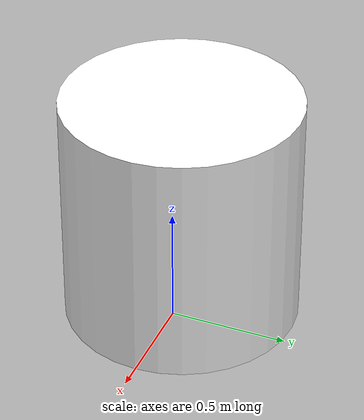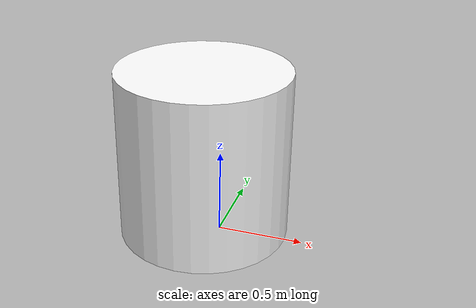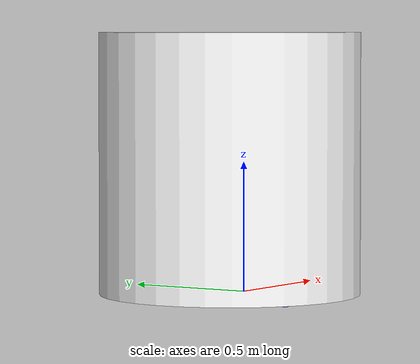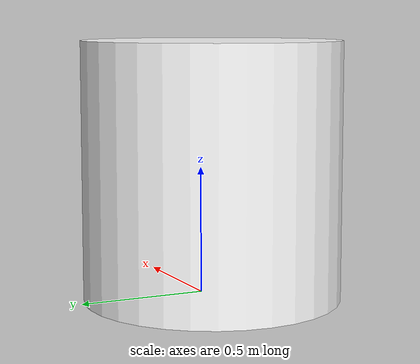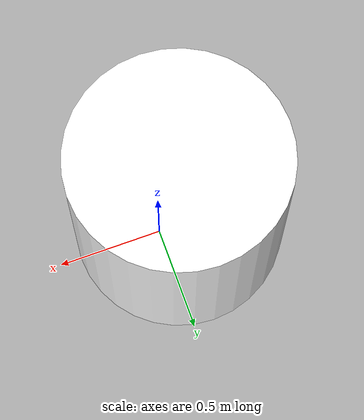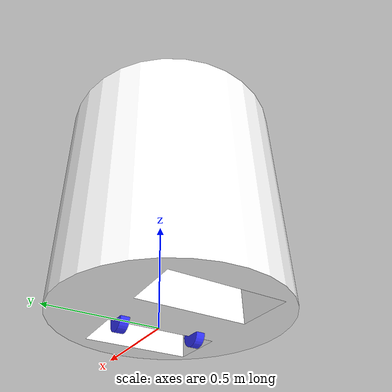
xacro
<?xml version="1.0"?>
<robot xmlns:xacro="http://www.ros.org/wiki/xacro" >

    <xacro:include filename="inertial_macros.xacro" /> <!-- ดึงข้อมูลจากไฟล์ inertial_macros.xacro -->
    <material name="white"> <!-- สร้าง material ของสีขาว  -->
        <color rgba="1 1 1 1" /> <!-- กำหนดค่าสี  -->
    </material>

    <material name="orange"> <!-- สร้าง material ของสีส้ม  -->
        <color rgba="1 0.3 0.1 1"/> <!-- กำหนดค่าสี  -->
    </material>

    <material name="blue"> <!-- สร้าง material ของสีฟ้า  -->
        <color rgba="0.2 0.2 1 1"/> <!-- กำหนดค่าสี  -->
    </material>

    <material name="black"> <!-- สร้าง material ของสีดำ  -->
        <color rgba="0 0 0 1"/> <!-- กำหนดค่าสี  -->
    </material>

    <material name="red"> <!-- สร้าง material ของสีแดง  -->
        <color rgba="1 0 0 1"/> <!-- กำหนดค่าสี  -->
    </material>

    <!-- BASE LINK -->

    <link name="base_link"> <!-- สร้าง link ชื่อ base_link  -->

    </link>

    <!-- BASE_FOOTPRINT LINK -->

    <joint name="base_footprint_joint" type="fixed">
        <parent link="base_link"/>
        <child link="base_footprint"/>
        <origin xyz="0 0 0" rpy="0 0 0"/>
    </joint>

    <link name="base_footprint">
    </link>

    <link name="chassis">
        <visual>
            <origin xyz="0.0 0.0 -0.0" rpy="0 0 0"/>
            <geometry>
                <mesh filename = "file://$(find articubot_one)/description/Model_dae/body.dae" scale = "1 1 1"/>
            </geometry>
            <material name="white"/>
        </visual>
        <collision>
            <origin xyz="0.0 0.0 0.0" rpy="0 0 0"/>
            <geometry>
                <mesh filename = "file://$(find articubot_one)/description/Model_dae/body.dae" scale = "1 1 1"/>
            </geometry>
        </collision>
        <xacro:inertial_cylinder mass="200" length="1.0" radius="0.5">
            <origin xyz="0.0 0.0 0.0" rpy="0 0 0"/>
        </xacro:inertial_cylinder>
    </link>
    <gazebo reference="chassis">
        <material>Gazebo/Orange</material>
    </gazebo>

    <joint name="chassis_joint" type="fixed"> <!-- สร้าง joint ชื่อ chassis_joint แบบ fixed  -->
        <parent link="base_link"/> <!-- สร้าง joint_link หลัก ชื่อ base_link -->
        <child link="chassis"/> <!-- สร้าง joint_link ย่อย ชื่อ chassis -->
        <origin xyz="-0.1 0 0"/> <!-- กำหนดตั้งค่าพิกัด (x, y, z) ของ joint -->
    </joint>

   <!-- LEFT WHEEL -->

    <joint name="left_wheel_joint" type="continuous"> <!-- สร้าง joint ชื่อ left_wheel_joint แบบ continuous  -->
        <parent link="base_link"/> <!-- สร้าง joint_link หลัก ชื่อ base_link -->
        <child link="left_wheel"/> <!-- สร้าง joint_link ย่อย ชื่อ left_wheel -->
        <origin xyz="0 0.175 0" rpy="-${pi/2} 0 0"/> <!-- กำหนดตั้งค่าพิกัด (x, y, z) และการหันหน้าของ joint -->
        <axis xyz="0 0 1"/> <!-- กำหนดแกนหมุนของ joint -->
    </joint>
    <link name="left_wheel"> <!-- สร้าง link ชื่อ left_wheel  -->
        <visual>
            <geometry>
                <cylinder length="0.04" radius="0.05" /> <!-- สร้างทรงกระบอก visual และกำหนดความยาวและรัศมี -->
            </geometry>
            <material name="blue"/> <!-- ดึงข้อมูลค่าสีจาก material ชื่อ blue -->
        </visual>
        <collision>
            <geometry>
                <cylinder length="0.04" radius="0.05" />  <!-- สร้างกล่อง collision และกำหนดขนาด -->
            </geometry>
        </collision>
        <xacro:inertial_cylinder mass="0.1" length="0.05" radius="0.05"> <!-- กำหนด inertial_cylinder ค่ามวล ความยาวและรัศมี -->
            <origin xyz="0 0 0" rpy="0 0 0"/> <!-- กำหนด inertial_cylinder ของ link left_wheel และตั้งค่าพิกัด (x, y, z) และแกนหมุน -->
        </xacro:inertial_cylinder>
    </link>
    <gazebo reference="left_wheel">
        <material>Gazebo/Blue</material>
    </gazebo>

    <!-- RIGHT WHEEL -->

    <joint name="right_wheel_joint" type="continuous"> <!-- สร้าง joint ชื่อ right_wheel_joint แบบ continuous  -->
        <parent link="base_link"/> <!-- สร้าง joint_link หลัก ชื่อ base_link -->
        <child link="right_wheel"/> <!-- สร้าง joint_link ย่อย ชื่อ right_wheel -->
        <origin xyz="0 -0.175 0" rpy="${pi/2} 0 0"/> <!-- กำหนดตั้งค่าพิกัด (x, y, z) และการหันหน้าของ joint -->
        <axis xyz="0 0 -1"/> <!-- กำหนดแกนหมุนของ joint -->
    </joint>
    <link name="right_wheel"> <!-- สร้าง link ชื่อ right_wheel  -->
        <visual>
            <geometry>
                <cylinder length="0.04" radius="0.05" /> <!-- สร้างทรงกระบอก visual และกำหนดความยาวและรัศมี -->
            </geometry>
            <material name="blue"/> <!-- ดึงข้อมูลค่าสีจาก material ชื่อ blue -->
        </visual>
        <collision>
            <geometry>
                <cylinder length="0.04" radius="0.05" />  <!-- สร้างกล่อง collision และกำหนดขนาด -->
            </geometry>
        </collision>
        <xacro:inertial_cylinder mass="0.1" length="0.05" radius="0.05"> <!-- กำหนด inertial_cylinder ค่ามวล ความยาวและรัศมี -->
            <origin xyz="0 0 0" rpy="0 0 0"/> <!-- กำหนด inertial_cylinder ของ link right_wheel และตั้งค่าพิกัด (x, y, z) และแกนหมุน -->
        </xacro:inertial_cylinder>
    </link>
    <gazebo reference="right_wheel">
        <material>Gazebo/Blue</material>
    </gazebo>

</robot>
